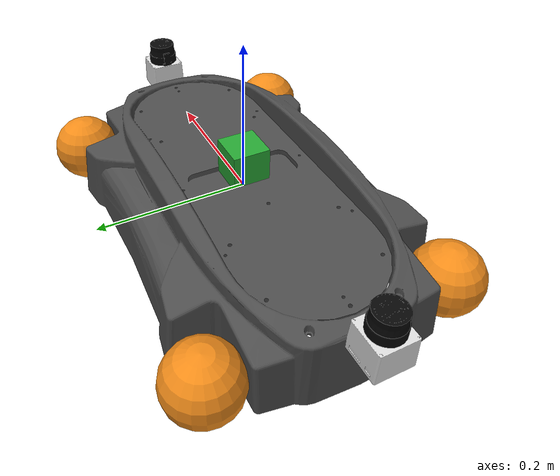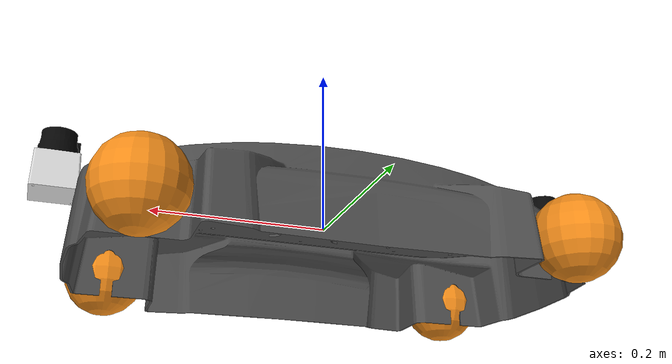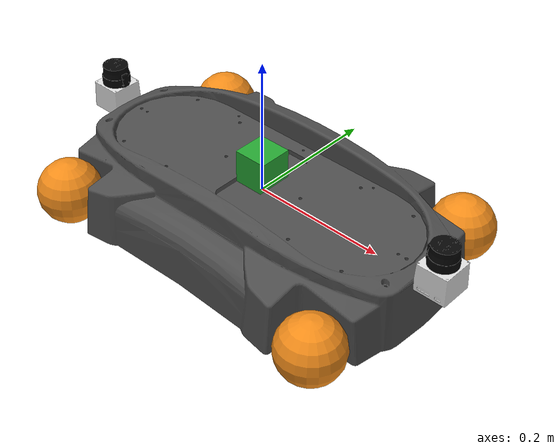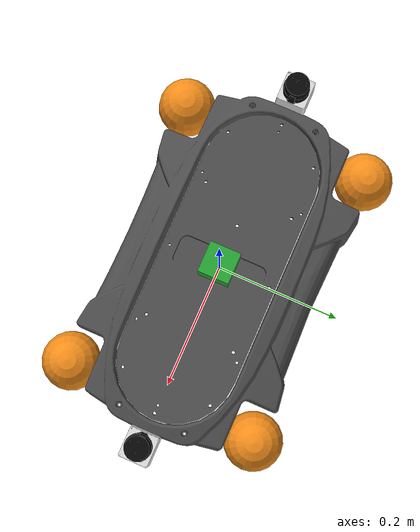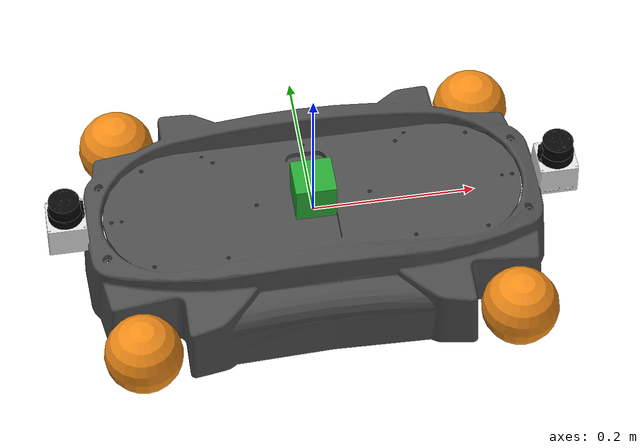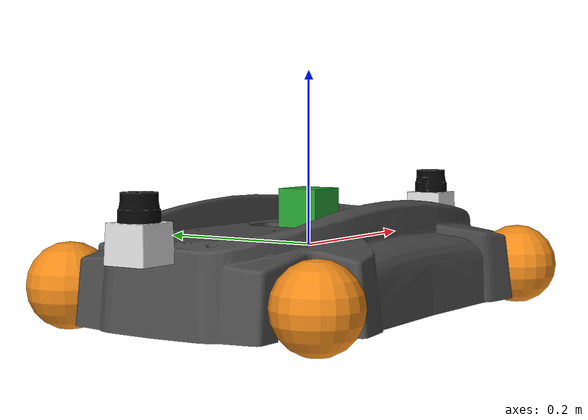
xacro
<?xml version="1.0"?>
<robot xmlns:sensor="http://playerstage.sourceforge.net/gazebo/xmlschema/#sensor"
       xmlns:controller="http://playerstage.sourceforge.net/gazebo/xmlschema/#controller"
       xmlns:interface="http://playerstage.sourceforge.net/gazebo/xmlschema/#interface"
       xmlns:xacro="http://www.ros.org/wiki/xacro"
       name="youbot" >

  <!-- The following xacro:included files set up definitions of parts of the robot body -->
  <!-- misc common stuff? -->
  <xacro:include filename="$(find youbot_description)/urdf/common.xacro" />

  <!-- youbot base -->
  <xacro:include filename="$(find youbot_description)/urdf/youbot_base/base.urdf.xacro" />

  <!-- controller manager -->
  <xacro:include filename="$(find youbot_description)/controller/ros_controller.urdf.xacro" />

  <!-- materials for visualization -->
  <xacro:include filename="$(find youbot_description)/urdf/materials.urdf.xacro" />

  <!-- sensors -->
  <xacro:include filename="$(find youbot_description)/urdf/sensors/hokuyo_utm30lx.urdf.xacro"/>
  <xacro:include filename="$(find youbot_description)/urdf/sensors/imu.urdf.xacro"/>

  <!-- Now we can start using the macros xacro:included above to define the actual youbot -->

  <xacro:youbot_base name="base"/>

  <!-- base laser front -->
  <xacro:hokuyo_utm30lx_laser name="base_laser_front" parent="base" ros_topic="scan_1" update_rate="40" min_angle="-2.36" max_angle="2.36">
    <origin xyz="0.3 0 0.04" rpy="0 0 0"/>
  </xacro:hokuyo_utm30lx_laser>

  <!-- base laser back -->
  <xacro:hokuyo_utm30lx_laser name="base_laser_back" parent="base" ros_topic="scan_2" update_rate="40" min_angle="-2.36" max_angle="2.36">
    <origin xyz="-0.3 0 0.04" rpy="0 0 3.1415"/>
  </xacro:hokuyo_utm30lx_laser>

</robot>

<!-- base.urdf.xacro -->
<robot xmlns:sensor="http://playerstage.sourceforge.net/gazebo/xmlschema/#sensor"
       xmlns:controller="http://playerstage.sourceforge.net/gazebo/xmlschema/#controller"
       xmlns:interface="http://playerstage.sourceforge.net/gazebo/xmlschema/#interface"
       xmlns:xacro="http://www.ros.org/wiki/xacro">

  <xacro:include filename="$(find youbot_description)/urdf/youbot_base/base.gazebo.xacro"/>
  <xacro:include filename="$(find youbot_description)/urdf/youbot_base/base.transmission.xacro"/>

  <!-- simplified box collision geometry for base -->
  <xacro:property name="base_size_x" value="0.570"/>
  <xacro:property name="base_size_y" value="0.360"/>
  <xacro:property name="base_size_z" value="0.100"/>
  <xacro:property name="base_mass" value="22.0"/>

  <xacro:property name="caster_offset_x" value="0.228"/>
  <xacro:property name="caster_offset_y" value="0.158"/>
  <xacro:property name="caster_offset_z" value="-0.034"/>
  <xacro:property name="caster_mass" value="0.1"/>

  <xacro:property name="wheel_offset_x" value="0.0"/>
  <xacro:property name="wheel_offset_y" value="0.0"/>
  <xacro:property name="wheel_offset_z" value="0.0"/>

  <xacro:property name="wheel_mass" value="1.4"/>
  <xacro:property name="wheel_radius" value="0.0475"/>
  <xacro:property name="wheel_length" value="0.005"/>

  <xacro:property name="caster_joint_damping" value="1.0"/>
  <xacro:property name="caster_joint_friction" value="1.0"/>
  <xacro:property name="caster_joint_effort" value="30"/>
  <xacro:property name="caster_joint_velocity" value="10"/>
  <xacro:property name="caster_joint_safety_k_velocity" value="10.0"/>

  <xacro:property name="wheel_joint_damping" value="1.0"/>
  <xacro:property name="wheel_joint_friction" value="1.0"/>
  <xacro:property name="wheel_joint_effort" value="30"/>
  <xacro:property name="wheel_joint_velocity" value="10"/>
  <xacro:property name="wheel_joint_safety_k_velocity" value="10.0"/>

  <xacro:macro name="youbot_base" params="name">
    <link name="${name}_footprint">
      <inertial>
        <mass value="0.1"/>
        <origin xyz="0 0 ${-base_size_z / 2.0}" rpy="0 0 0"/>
        <inertia ixx="1.0" ixy="0.0" ixz="0.0" iyy="1.0" iyz="0.0" izz="1.0"/>
      </inertial>
      <visual>
        <origin xyz="0 0 0" rpy="0 0 0"/>
        <geometry>
          <box size="0.001 0.001 0.001"/>
        </geometry>
        <material name="youBot/Red"/>
      </visual>
      <collision>
        <origin xyz="0 0 ${-base_size_z / 2.0}" rpy="0 0 0"/>
        <geometry>
          <box size="0.001 0.001 0.001"/>
        </geometry>
      </collision>
    </link>
    <joint name="${name}_footprint_joint" type="fixed">
      <origin xyz="0 0 0" rpy="0 0 0"/>
      <child link="${name}_link"/>
      <parent link="${name}_footprint"/>
    </joint>

    <link name="${name}_link">
      <inertial>
        <mass value="${base_mass}"/>
        <origin xyz="0 0 0"/>
        <inertia ixx="5.652232699207" ixy="-0.009719934438" ixz="1.293988226423" iyy="5.669473158652" iyz="-0.007379583694" izz="3.683196351726"/>
      </inertial>
      <visual>
        <origin xyz="0 0 0" rpy="0 0 0"/>
        <geometry>
          <mesh filename="package://youbot_description/meshes/youbot_base/base.dae"/>
        </geometry>
        <material name="youBot/DarkGrey"/>
      </visual>
      <collision>
        <origin xyz="0 0 0" rpy="0 0 0"/>
        <geometry>
          <mesh filename="package://youbot_description/meshes/youbot_base/base_convex.dae"/>
        </geometry>
      </collision>
    </link>

    <!-- front left wheel -->
    <joint name="caster_joint_fl" type="continuous">
      <origin xyz="${caster_offset_x} ${caster_offset_y} ${caster_offset_z}" rpy="0 0 0"/>
      <axis xyz="0 0 1"/>
      <limit effort="${caster_joint_effort}" velocity="${caster_joint_velocity}"/>
      <dynamics damping="${caster_joint_damping}" friction="${caster_joint_friction}"/>
      <safety_controller k_velocity="${caster_joint_safety_k_velocity}"/>
      <parent link="${name}_link"/>
      <child link="caster_link_fl"/>
    </joint>
    <link name="caster_link_fl">
      <inertial>
        <mass value="${caster_mass}"/>
        <origin xyz="0 0 0"/>
        <inertia ixx="0.012411765597" ixy="-0.000711733678" ixz="0.00050272983" iyy="0.015218160428" iyz="-0.000004273467" izz="0.011763977943"/>
      </inertial>
    </link>

    <joint name="wheel_joint_fl" type="continuous">
      <axis xyz="0 1 0"/>
      <limit effort="${wheel_joint_effort}" velocity="${wheel_joint_velocity}"/>
      <origin xyz="${wheel_offset_x} ${wheel_offset_y} ${wheel_offset_z}" rpy="0 0 0"/>
      <parent link="caster_link_fl"/>
      <dynamics damping="${wheel_joint_damping}" friction="${wheel_joint_friction}"/>
      <safety_controller k_velocity="${wheel_joint_safety_k_velocity}"/>
      <child link="wheel_link_fl"/>
    </joint>
    <link name="wheel_link_fl">
      <inertial>
        <mass value="${wheel_mass}"/>
        <origin xyz="0 0 0"/>
        <inertia ixx="0.012411765597" ixy="-0.000711733678" ixz="0.00050272983" iyy="0.015218160428" iyz="-0.000004273467" izz="0.011763977943"/>
      </inertial>
      <visual>
        <origin xyz="0 0 0" rpy="0 0 0"/>
        <geometry>
          <sphere radius="${wheel_radius}"/>
        </geometry>
        <material name="youBot/Orange"/>
      </visual>
      <collision>
        <origin xyz="0 0 0" rpy="${M_PI/2} 0 0"/>
        <geometry>
          <cylinder radius="${wheel_radius}" length="${wheel_radius}"/>
        </geometry>
      </collision>
    </link>

    <!-- front right wheel -->
    <joint name="caster_joint_fr" type="continuous">
      <origin xyz="${caster_offset_x} ${-caster_offset_y} ${caster_offset_z}" rpy="0 0 0"/>
      <axis xyz="0 0 1"/>
      <limit effort="${caster_joint_effort}" velocity="${caster_joint_velocity}"/>
      <dynamics damping="${caster_joint_damping}" friction="${caster_joint_friction}"/>
      <safety_controller k_velocity="${caster_joint_safety_k_velocity}"/>
      <parent link="${name}_link"/>
      <child link="caster_link_fr"/>
    </joint>
    <link name="caster_link_fr">
      <inertial>
        <mass value="${caster_mass}"/>
        <origin xyz="0 0 0"/>
        <inertia ixx="0.012411765597" ixy="-0.000711733678" ixz="0.00050272983" iyy="0.015218160428" iyz="-0.000004273467" izz="0.011763977943"/>
      </inertial>
    </link>

    <joint name="wheel_joint_fr" type="continuous">
      <axis xyz="0 1 0"/>
      <limit effort="${wheel_joint_effort}" velocity="${wheel_joint_velocity}"/>
      <dynamics damping="${wheel_joint_damping}" friction="${wheel_joint_friction}"/>
      <safety_controller k_velocity="${wheel_joint_safety_k_velocity}"/>
      <origin xyz="${wheel_offset_x} ${wheel_offset_y} ${wheel_offset_z}" rpy="0 0 0"/>
      <parent link="caster_link_fr"/>
      <child link="wheel_link_fr"/>
    </joint>
    <link name="wheel_link_fr">
      <inertial>
        <mass value="${wheel_mass}"/>
        <origin xyz="0 0 0"/>
        <inertia ixx="0.012411765597" ixy="-0.000711733678" ixz="0.00050272983" iyy="0.015218160428" iyz="-0.000004273467" izz="0.011763977943"/>
      </inertial>
      <visual>
        <origin xyz="0 0 0" rpy="0 0 0"/>
        <geometry>
          <sphere radius="${wheel_radius}"/>
        </geometry>
        <material name="youBot/Orange"/>
      </visual>
      <collision>
        <origin xyz="0 0 0" rpy="${M_PI/2} 0 0"/>
        <geometry>
          <cylinder radius="${wheel_radius}" length="${wheel_radius}"/>
        </geometry>
      </collision>
    </link>

    <!-- back left wheel -->
    <joint name="caster_joint_bl" type="continuous">
      <origin xyz="${-caster_offset_x} ${caster_offset_y} ${caster_offset_z}" rpy="0 0 0"/>
      <axis xyz="0 0 1"/>
      <limit effort="${caster_joint_effort}" velocity="${caster_joint_velocity}"/>
      <dynamics damping="${caster_joint_damping}" friction="${caster_joint_friction}"/>
      <safety_controller k_velocity="${caster_joint_safety_k_velocity}"/>
      <parent link="${name}_link"/>
      <child link="caster_link_bl"/>
    </joint>
    <link name="caster_link_bl">
      <inertial>
        <mass value="${caster_mass}"/>
        <origin xyz="0 0 0"/>
        <inertia ixx="0.012411765597" ixy="-0.000711733678" ixz="0.00050272983" iyy="0.015218160428" iyz="-0.000004273467" izz="0.011763977943"/>
      </inertial>
    </link>

    <joint name="wheel_joint_bl" type="continuous">
      <axis xyz="0 1 0"/>
      <limit effort="10" velocity="10"/>
      <limit effort="${wheel_joint_effort}" velocity="${wheel_joint_velocity}"/>
      <dynamics damping="${wheel_joint_damping}" friction="${wheel_joint_friction}"/>
      <safety_controller k_velocity="${wheel_joint_safety_k_velocity}"/>
      <origin xyz="${wheel_offset_x} ${wheel_offset_y} ${wheel_offset_z}" rpy="0 0 0"/>
      <parent link="caster_link_bl"/>
      <child link="wheel_link_bl"/>
    </joint>
    <link name="wheel_link_bl">
      <inertial>
        <mass value="${wheel_mass}"/>
        <origin xyz="0 0 0"/>
        <inertia ixx="0.012411765597" ixy="-0.000711733678" ixz="0.00050272983" iyy="0.015218160428" iyz="-0.000004273467" izz="0.011763977943"/>
      </inertial>
      <visual>
        <origin xyz="0 0 0" rpy="0 0 0"/>
        <geometry>
          <sphere radius="${wheel_radius}"/>
        </geometry>
        <material name="youBot/Orange"/>
      </visual>
      <collision>
        <origin xyz="0 0 0" rpy="${M_PI/2} 0 0"/>
        <geometry>
          <cylinder radius="${wheel_radius}" length="${wheel_radius}"/>
        </geometry>
      </collision>
    </link>

    <!-- back right wheel -->
    <joint name="caster_joint_br" type="continuous">
      <origin xyz="${-caster_offset_x} ${-caster_offset_y} ${caster_offset_z}" rpy="0 0 0"/>
      <axis xyz="0 0 1"/>
      <limit effort="${caster_joint_effort}" velocity="${caster_joint_velocity}"/>
      <dynamics damping="${caster_joint_damping}" friction="${caster_joint_friction}"/>
      <safety_controller k_velocity="${caster_joint_safety_k_velocity}"/>
      <parent link="${name}_link"/>
      <child link="caster_link_br"/>
    </joint>
    <link name="caster_link_br">
      <inertial>
        <mass value="${caster_mass}"/>
        <origin xyz="0 0 0"/>
        <inertia ixx="0.012411765597" ixy="-0.000711733678" ixz="0.00050272983" iyy="0.015218160428" iyz="-0.000004273467" izz="0.011763977943"/>
      </inertial>
    </link>

    <joint name="wheel_joint_br" type="continuous">
      <axis xyz="0 1 0"/>
      <limit effort="${wheel_joint_effort}" velocity="${wheel_joint_velocity}"/>
      <dynamics damping="${wheel_joint_damping}" friction="${wheel_joint_friction}"/>
      <safety_controller k_velocity="${wheel_joint_safety_k_velocity}"/>
      <origin xyz="${wheel_offset_x} ${wheel_offset_y} ${wheel_offset_z}" rpy="0 0 0"/>
      <parent link="caster_link_br"/>
      <child link="wheel_link_br"/>
    </joint>
    <link name="wheel_link_br">
      <inertial>
        <mass value="${wheel_mass}"/>
        <origin xyz="0 0 0"/>
        <inertia ixx="0.012411765597" ixy="-0.000711733678" ixz="0.00050272983" iyy="0.015218160428" iyz="-0.000004273467" izz="0.011763977943"/>
      </inertial>
      <visual>
        <origin xyz="0 0 0" rpy="0 0 0"/>
        <geometry>
          <sphere radius="${wheel_radius}"/>
        </geometry>
        <material name="youBot/Orange"/>
      </visual>
      <collision>
        <origin xyz="0 0 0" rpy="${M_PI/2} 0 0"/>
        <geometry>
          <cylinder radius="${wheel_radius}" length="${wheel_radius}"/>
        </geometry>
      </collision>
    </link>

    <!-- extensions -->
    <xacro:youbot_base_gazebo/>
    <xacro:youbot_base_transmission/>

  </xacro:macro>
</robot>

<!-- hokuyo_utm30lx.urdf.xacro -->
<robot xmlns:sensor="http://playerstage.sourceforge.net/gazebo/xmlschema/#sensor"
       xmlns:controller="http://playerstage.sourceforge.net/gazebo/xmlschema/#controller"
       xmlns:interface="http://playerstage.sourceforge.net/gazebo/xmlschema/#interface"
       xmlns:xacro="http://www.ros.org/wiki/xacro">

  <xacro:include filename="$(find youbot_description)/urdf/sensors/hokuyo_utm30lx_laser.gazebo.xacro" />

  <xacro:macro name="hokuyo_utm30lx_laser" params="name parent *origin ros_topic update_rate min_angle max_angle">
    <joint name="${name}_hokuyo_utm30lx_laser_joint" type="fixed">
      <axis xyz="0 1 0" />
      <xacro:insert_block name="origin" />
      <parent link="${parent}_link"/>
      <child link="${name}_link"/>
    </joint>
    <link name="${name}_link" type="laser">
      <inertial>
        <mass value="0.16" />
        <origin xyz="0 0 0" rpy="0 0 0" />
        <inertia ixx="0.1" ixy="0" ixz="0" iyy="0.1" iyz="0" izz="0.1" />
      </inertial>
      <visual>
        <origin xyz="0 0 0" rpy="0 0 0" />
        <geometry>
          <mesh filename="package://youbot_description/meshes/sensors/hokuyo.dae" />
        </geometry>
      </visual>

      <collision>
        <origin xyz="0 0 0" rpy="0 0 0" />
        <geometry>
          <mesh filename="package://youbot_description/meshes/sensors/hokuyo_convex.dae" />
        </geometry>
      </collision>
    </link>
    <!-- gazebo extensions -->
    <xacro:hokuyo_utm30lx_laser_gazebo name="${name}" ros_topic="${ros_topic}" update_rate="${update_rate}" min_angle="${min_angle}" max_angle="${max_angle}" />
  </xacro:macro>
</robot>

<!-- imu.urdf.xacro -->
<!-- YouBot IMU -->
<robot name="youbot_base_only" xmlns:xacro="http://www.ros.org/wiki/xacro">

  <!-- Constants for robot dimensions -->
  <xacro:property name="height" value="0.04" /> <!-- Link X -->
  <xacro:property name="imu_link" value="0.05" /> <!-- Size of square 'IMU' box -->

  <!-- Import all Gazebo-customization elements, including Gazebo colors -->
  <xacro:include filename="$(find youbot_description)/urdf/sensors/imu.gazebo" />
  <!-- Import Rviz colors -->
  <xacro:include filename="$(find youbot_description)/urdf/sensors/materials.xacro" />

  <!-- IMU joint -->
  <joint name="imu_joint" type="fixed">
    <axis xyz="0 0 0" />
    <origin xyz="0 0 ${height}" rpy="0 0 0"/>
    <parent link="base_link"/>
    <child link="imu_link"/>
  </joint>

  <!-- IMU -->
  <link name="imu_link">
    <collision>
      <origin xyz="0 0 0" rpy="0 0 0"/>
      <geometry>
	<box size="${imu_link} ${imu_link} ${imu_link}"/>
      </geometry>
    </collision>

    <visual>
      <origin xyz="0 0 0" rpy="0 0 0"/>
      <geometry>
	<box size="${imu_link} ${imu_link} ${imu_link}"/>
      </geometry>
      <material name="green"/>
    </visual>

    <inertial>
      <mass value="1e-5" />
      <origin xyz="0 0 0" rpy="0 0 0"/>
      <inertia ixx="1e-6" ixy="0" ixz="0" iyy="1e-6" iyz="0" izz="1e-6" />
    </inertial>
  </link>

</robot>
